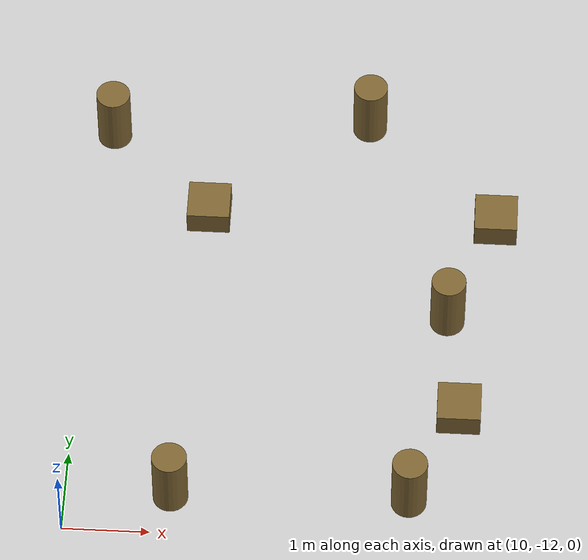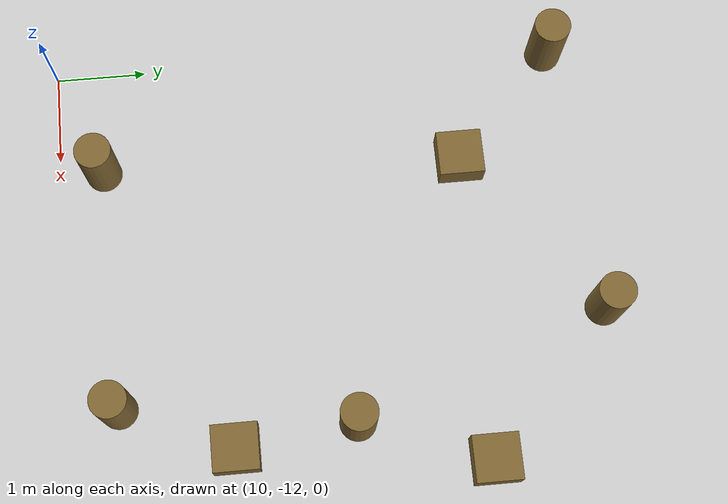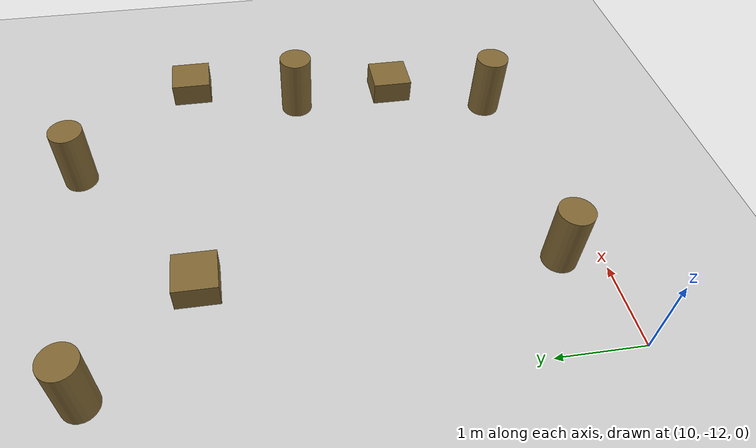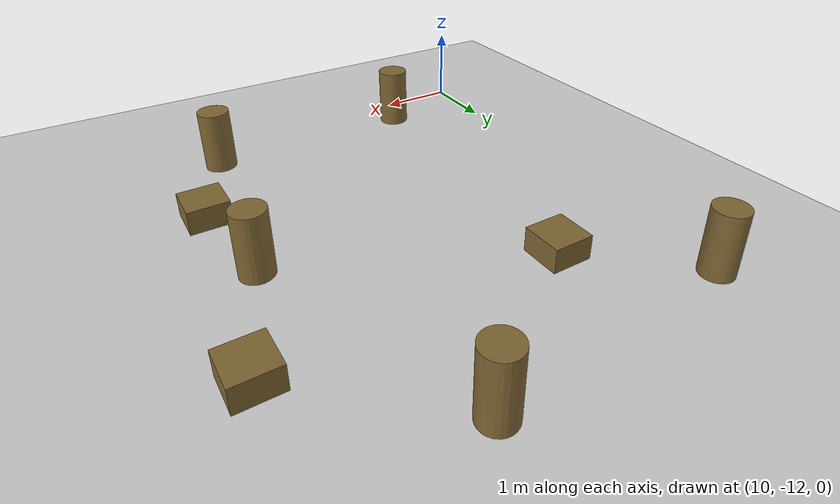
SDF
<sdf version="1.6">
 <world name="default">
  <model name="ground_plane">
   <static>1</static>
   <link name="link">
    <collision name="collision">
     <geometry><plane><normal>0 0 1</normal><size>100 100</size></plane></geometry>
     <surface><friction><ode><mu>100</mu><mu2>50</mu2></ode></friction></surface>
    </collision>
    <visual name="visual">
     <cast_shadows>0</cast_shadows>
     <geometry><plane><normal>0 0 1</normal><size>100 100</size></plane></geometry>
     <material>
      <script><uri>file://media/materials/scripts/gazebo.material</uri><name>Gazebo/Grey</name></script>
     </material>
    </visual>
   </link>
  </model>
  <model name="mini_cylinder_0_clone_0_clone">
   <link name="link">
    <inertial>
     <mass>1</mass>
     <inertia><ixx>0.145833</ixx><ixy>0</ixy><ixz>0</ixz><iyy>0.145833</iyy><iyz>0</iyz><izz>0.125</izz></inertia>
    </inertial>
    <visual name="visual">
     <geometry><cylinder><radius>0.2</radius><length>0.8</length></cylinder></geometry>
     <material>
      <script><name>Gazebo/Grey</name><uri>file://media/materials/scripts/gazebo.material</uri></script>
      <shader type="vertex"><normal_map>__default__</normal_map></shader>
      <ambient>0.5 0.4 0.2 1</ambient>
      <diffuse>0.7 0.7 0.7 1</diffuse>
      <specular>0.01 0.01 0.01 1</specular>
      <emissive>0 0 0 1</emissive>
     </material>
    </visual>
    <collision name="collision">
     <geometry><cylinder><radius>0.2</radius><length>0.8</length></cylinder></geometry>
     <surface>
      <friction>
       <ode><mu>1</mu><mu2>1</mu2><fdir1>0 0 0</fdir1><slip1>0</slip1><slip2>0</slip2></ode>
       <torsional>
        <coefficient>1</coefficient>
        <patch_radius>0</patch_radius>
        <surface_radius>0</surface_radius>
        <use_patch_radius>1</use_patch_radius>
        <ode><slip>0</slip></ode>
       </torsional>
      </friction>
      <bounce><restitution_coefficient>0</restitution_coefficient><threshold>1e+06</threshold></bounce>
      <contact>
       <collide_without_contact>0</collide_without_contact>
       <collide_without_contact_bitmask>1</collide_without_contact_bitmask>
       <collide_bitmask>1</collide_bitmask>
       <ode>
        <soft_cfm>0</soft_cfm>
        <soft_erp>0.2</soft_erp>
        <kp>1e+13</kp>
        <kd>1</kd>
        <max_vel>0.01</max_vel>
        <min_depth>0</min_depth>
       </ode>
       <bullet>
        <split_impulse>1</split_impulse>
        <split_impulse_penetration_threshold>-0.01</split_impulse_penetration_threshold>
        <soft_cfm>0</soft_cfm>
        <soft_erp>0.2</soft_erp>
        <kp>1e+13</kp>
        <kd>1</kd>
       </bullet>
      </contact>
     </surface>
    </collision>
   </link>
   <static>1</static>
   <pose>13.224 -6.11998 0.4 0 -0 0</pose>
  </model>
  <model name="mini_cylinder_0_clone_0_clone_1">
   <link name="link">
    <inertial>
     <mass>1</mass>
     <inertia><ixx>0.145833</ixx><ixy>0</ixy><ixz>0</ixz><iyy>0.145833</iyy><iyz>0</iyz><izz>0.125</izz></inertia>
    </inertial>
    <visual name="visual">
     <geometry><cylinder><radius>0.2</radius><length>0.8</length></cylinder></geometry>
     <material>
      <script><name>Gazebo/Grey</name><uri>file://media/materials/scripts/gazebo.material</uri></script>
      <shader type="vertex"><normal_map>__default__</normal_map></shader>
      <ambient>0.5 0.4 0.2 1</ambient>
      <diffuse>0.7 0.7 0.7 1</diffuse>
      <specular>0.01 0.01 0.01 1</specular>
      <emissive>0 0 0 1</emissive>
     </material>
    </visual>
    <collision name="collision">
     <geometry><cylinder><radius>0.2</radius><length>0.8</length></cylinder></geometry>
     <surface>
      <friction>
       <ode><mu>1</mu><mu2>1</mu2><fdir1>0 0 0</fdir1><slip1>0</slip1><slip2>0</slip2></ode>
       <torsional>
        <coefficient>1</coefficient>
        <patch_radius>0</patch_radius>
        <surface_radius>0</surface_radius>
        <use_patch_radius>1</use_patch_radius>
        <ode><slip>0</slip></ode>
       </torsional>
      </friction>
      <bounce><restitution_coefficient>0</restitution_coefficient><threshold>1e+06</threshold></bounce>
      <contact>
       <collide_without_contact>0</collide_without_contact>
       <collide_without_contact_bitmask>1</collide_without_contact_bitmask>
       <collide_bitmask>1</collide_bitmask>
       <ode>
        <soft_cfm>0</soft_cfm>
        <soft_erp>0.2</soft_erp>
        <kp>1e+13</kp>
        <kd>1</kd>
        <max_vel>0.01</max_vel>
        <min_depth>0</min_depth>
       </ode>
       <bullet>
        <split_impulse>1</split_impulse>
        <split_impulse_penetration_threshold>-0.01</split_impulse_penetration_threshold>
        <soft_cfm>0</soft_cfm>
        <soft_erp>0.2</soft_erp>
        <kp>1e+13</kp>
        <kd>1</kd>
       </bullet>
      </contact>
     </surface>
    </collision>
   </link>
   <static>1</static>
   <pose>14.2436 -8.91515 0.4 0 -0 0</pose>
  </model>
  <model name="mini_cylinder_0_clone_0_clone_2">
   <link name="link">
    <inertial>
     <mass>1</mass>
     <inertia><ixx>0.145833</ixx><ixy>0</ixy><ixz>0</ixz><iyy>0.145833</iyy><iyz>0</iyz><izz>0.125</izz></inertia>
    </inertial>
    <visual name="visual">
     <geometry><cylinder><radius>0.2</radius><length>0.8</length></cylinder></geometry>
     <material>
      <script><name>Gazebo/Grey</name><uri>file://media/materials/scripts/gazebo.material</uri></script>
      <shader type="vertex"><normal_map>__default__</normal_map></shader>
      <ambient>0.5 0.4 0.2 1</ambient>
      <diffuse>0.7 0.7 0.7 1</diffuse>
      <specular>0.01 0.01 0.01 1</specular>
      <emissive>0 0 0 1</emissive>
     </material>
    </visual>
    <collision name="collision">
     <geometry><cylinder><radius>0.2</radius><length>0.8</length></cylinder></geometry>
     <surface>
      <friction>
       <ode><mu>1</mu><mu2>1</mu2><fdir1>0 0 0</fdir1><slip1>0</slip1><slip2>0</slip2></ode>
       <torsional>
        <coefficient>1</coefficient>
        <patch_radius>0</patch_radius>
        <surface_radius>0</surface_radius>
        <use_patch_radius>1</use_patch_radius>
        <ode><slip>0</slip></ode>
       </torsional>
      </friction>
      <bounce><restitution_coefficient>0</restitution_coefficient><threshold>1e+06</threshold></bounce>
      <contact>
       <collide_without_contact>0</collide_without_contact>
       <collide_without_contact_bitmask>1</collide_without_contact_bitmask>
       <collide_bitmask>1</collide_bitmask>
       <ode>
        <soft_cfm>0</soft_cfm>
        <soft_erp>0.2</soft_erp>
        <kp>1e+13</kp>
        <kd>1</kd>
        <max_vel>0.01</max_vel>
        <min_depth>0</min_depth>
       </ode>
       <bullet>
        <split_impulse>1</split_impulse>
        <split_impulse_penetration_threshold>-0.01</split_impulse_penetration_threshold>
        <soft_cfm>0</soft_cfm>
        <soft_erp>0.2</soft_erp>
        <kp>1e+13</kp>
        <kd>1</kd>
       </bullet>
      </contact>
     </surface>
    </collision>
   </link>
   <static>1</static>
   <pose>13.8924 -11.4476 0.4 0 -0 0</pose>
  </model>
  <model name="mini_box_clone_clone_3_clone">
   <link name="link">
    <inertial>
     <mass>1</mass>
     <inertia>
      <ixx>0.166667</ixx>
      <ixy>0</ixy>
      <ixz>0</ixz>
      <iyy>0.166667</iyy>
      <iyz>0</iyz>
      <izz>0.166667</izz>
     </inertia>
    </inertial>
    <visual name="visual">
     <geometry><box><size>0.5 0.5 0.3</size></box></geometry>
     <material>
      <script><name>Gazebo/Grey</name><uri>file://media/materials/scripts/gazebo.material</uri></script>
      <shader type="vertex"><normal_map>__default__</normal_map></shader>
      <ambient>0.5 0.4 0.2 1</ambient>
      <diffuse>0.7 0.7 0.7 1</diffuse>
      <specular>0.01 0.01 0.01 1</specular>
      <emissive>0 0 0 1</emissive>
     </material>
    </visual>
    <collision name="collision">
     <geometry><box><size>0.5 0.5 0.3</size></box></geometry>
     <surface>
      <friction>
       <ode><mu>1</mu><mu2>1</mu2><fdir1>0 0 0</fdir1><slip1>0</slip1><slip2>0</slip2></ode>
       <torsional>
        <coefficient>1</coefficient>
        <patch_radius>0</patch_radius>
        <surface_radius>0</surface_radius>
        <use_patch_radius>1</use_patch_radius>
        <ode><slip>0</slip></ode>
       </torsional>
      </friction>
      <bounce><restitution_coefficient>0</restitution_coefficient><threshold>1e+06</threshold></bounce>
      <contact>
       <collide_without_contact>0</collide_without_contact>
       <collide_without_contact_bitmask>1</collide_without_contact_bitmask>
       <collide_bitmask>1</collide_bitmask>
       <ode>
        <soft_cfm>0</soft_cfm>
        <soft_erp>0.2</soft_erp>
        <kp>1e+13</kp>
        <kd>1</kd>
        <max_vel>0.01</max_vel>
        <min_depth>0</min_depth>
       </ode>
       <bullet>
        <split_impulse>1</split_impulse>
        <split_impulse_penetration_threshold>-0.01</split_impulse_penetration_threshold>
        <soft_cfm>0</soft_cfm>
        <soft_erp>0.2</soft_erp>
        <kp>1e+13</kp>
        <kd>1</kd>
       </bullet>
      </contact>
     </surface>
    </collision>
   </link>
   <static>1</static>
   <pose>11.3808 -7.50629 0.15 0 -0 0</pose>
  </model>
  <model name="mini_box_clone_clone_3_clone_1">
   <link name="link">
    <inertial>
     <mass>1</mass>
     <inertia>
      <ixx>0.166667</ixx>
      <ixy>0</ixy>
      <ixz>0</ixz>
      <iyy>0.166667</iyy>
      <iyz>0</iyz>
      <izz>0.166667</izz>
     </inertia>
    </inertial>
    <visual name="visual">
     <geometry><box><size>0.5 0.5 0.3</size></box></geometry>
     <material>
      <script><name>Gazebo/Grey</name><uri>file://media/materials/scripts/gazebo.material</uri></script>
      <shader type="vertex"><normal_map>__default__</normal_map></shader>
      <ambient>0.5 0.4 0.2 1</ambient>
      <diffuse>0.7 0.7 0.7 1</diffuse>
      <specular>0.01 0.01 0.01 1</specular>
      <emissive>0 0 0 1</emissive>
     </material>
    </visual>
    <collision name="collision">
     <geometry><box><size>0.5 0.5 0.3</size></box></geometry>
     <surface>
      <friction>
       <ode><mu>1</mu><mu2>1</mu2><fdir1>0 0 0</fdir1><slip1>0</slip1><slip2>0</slip2></ode>
       <torsional>
        <coefficient>1</coefficient>
        <patch_radius>0</patch_radius>
        <surface_radius>0</surface_radius>
        <use_patch_radius>1</use_patch_radius>
        <ode><slip>0</slip></ode>
       </torsional>
      </friction>
      <bounce><restitution_coefficient>0</restitution_coefficient><threshold>1e+06</threshold></bounce>
      <contact>
       <collide_without_contact>0</collide_without_contact>
       <collide_without_contact_bitmask>1</collide_without_contact_bitmask>
       <collide_bitmask>1</collide_bitmask>
       <ode>
        <soft_cfm>0</soft_cfm>
        <soft_erp>0.2</soft_erp>
        <kp>1e+13</kp>
        <kd>1</kd>
        <max_vel>0.01</max_vel>
        <min_depth>0</min_depth>
       </ode>
       <bullet>
        <split_impulse>1</split_impulse>
        <split_impulse_penetration_threshold>-0.01</split_impulse_penetration_threshold>
        <soft_cfm>0</soft_cfm>
        <soft_erp>0.2</soft_erp>
        <kp>1e+13</kp>
        <kd>1</kd>
       </bullet>
      </contact>
     </surface>
    </collision>
   </link>
   <static>1</static>
   <pose>14.4187 -10.2264 0.15 0 -0 0</pose>
  </model>
  <model name="mini_box_clone_clone_3_clone_2">
   <link name="link">
    <inertial>
     <mass>1</mass>
     <inertia>
      <ixx>0.166667</ixx>
      <ixy>0</ixy>
      <ixz>0</ixz>
      <iyy>0.166667</iyy>
      <iyz>0</iyz>
      <izz>0.166667</izz>
     </inertia>
    </inertial>
    <visual name="visual">
     <geometry><box><size>0.5 0.5 0.3</size></box></geometry>
     <material>
      <script><name>Gazebo/Grey</name><uri>file://media/materials/scripts/gazebo.material</uri></script>
      <shader type="vertex"><normal_map>__default__</normal_map></shader>
      <ambient>0.5 0.4 0.2 1</ambient>
      <diffuse>0.7 0.7 0.7 1</diffuse>
      <specular>0.01 0.01 0.01 1</specular>
      <emissive>0 0 0 1</emissive>
     </material>
    </visual>
    <collision name="collision">
     <geometry><box><size>0.5 0.5 0.3</size></box></geometry>
     <surface>
      <friction>
       <ode><mu>1</mu><mu2>1</mu2><fdir1>0 0 0</fdir1><slip1>0</slip1><slip2>0</slip2></ode>
       <torsional>
        <coefficient>1</coefficient>
        <patch_radius>0</patch_radius>
        <surface_radius>0</surface_radius>
        <use_patch_radius>1</use_patch_radius>
        <ode><slip>0</slip></ode>
       </torsional>
      </friction>
      <bounce><restitution_coefficient>0</restitution_coefficient><threshold>1e+06</threshold></bounce>
      <contact>
       <collide_without_contact>0</collide_without_contact>
       <collide_without_contact_bitmask>1</collide_without_contact_bitmask>
       <collide_bitmask>1</collide_bitmask>
       <ode>
        <soft_cfm>0</soft_cfm>
        <soft_erp>0.2</soft_erp>
        <kp>1e+13</kp>
        <kd>1</kd>
        <max_vel>0.01</max_vel>
        <min_depth>0</min_depth>
       </ode>
       <bullet>
        <split_impulse>1</split_impulse>
        <split_impulse_penetration_threshold>-0.01</split_impulse_penetration_threshold>
        <soft_cfm>0</soft_cfm>
        <soft_erp>0.2</soft_erp>
        <kp>1e+13</kp>
        <kd>1</kd>
       </bullet>
      </contact>
     </surface>
    </collision>
   </link>
   <static>1</static>
   <pose>14.767 -7.51176 0.15 0 -0 0</pose>
  </model>
  <model name="mini_cylinder_0_clone_0_clone_clone">
   <link name="link">
    <inertial>
     <mass>1</mass>
     <inertia><ixx>0.145833</ixx><ixy>0</ixy><ixz>0</ixz><iyy>0.145833</iyy><iyz>0</iyz><izz>0.125</izz></inertia>
    </inertial>
    <visual name="visual">
     <geometry><cylinder><radius>0.2</radius><length>0.8</length></cylinder></geometry>
     <material>
      <script><name>Gazebo/Grey</name><uri>file://media/materials/scripts/gazebo.material</uri></script>
      <shader type="vertex"><normal_map>__default__</normal_map></shader>
      <ambient>0.5 0.4 0.2 1</ambient>
      <diffuse>0.7 0.7 0.7 1</diffuse>
      <specular>0.01 0.01 0.01 1</specular>
      <emissive>0 0 0 1</emissive>
     </material>
    </visual>
    <collision name="collision">
     <geometry><cylinder><radius>0.2</radius><length>0.8</length></cylinder></geometry>
     <surface>
      <friction>
       <ode><mu>1</mu><mu2>1</mu2><fdir1>0 0 0</fdir1><slip1>0</slip1><slip2>0</slip2></ode>
       <torsional>
        <coefficient>1</coefficient>
        <patch_radius>0</patch_radius>
        <surface_radius>0</surface_radius>
        <use_patch_radius>1</use_patch_radius>
        <ode><slip>0</slip></ode>
       </torsional>
      </friction>
      <bounce><restitution_coefficient>0</restitution_coefficient><threshold>1e+06</threshold></bounce>
      <contact>
       <collide_without_contact>0</collide_without_contact>
       <collide_without_contact_bitmask>1</collide_without_contact_bitmask>
       <collide_bitmask>1</collide_bitmask>
       <ode>
        <soft_cfm>0</soft_cfm>
        <soft_erp>0.2</soft_erp>
        <kp>1e+13</kp>
        <kd>1</kd>
        <max_vel>0.01</max_vel>
        <min_depth>0</min_depth>
       </ode>
       <bullet>
        <split_impulse>1</split_impulse>
        <split_impulse_penetration_threshold>-0.01</split_impulse_penetration_threshold>
        <soft_cfm>0</soft_cfm>
        <soft_erp>0.2</soft_erp>
        <kp>1e+13</kp>
        <kd>1</kd>
       </bullet>
      </contact>
     </surface>
    </collision>
   </link>
   <static>1</static>
   <pose>10.1744 -6.38296 0.4 0 -0 0</pose>
  </model>
  <model name="mini_cylinder_0_clone_0_clone_clone_0">
   <link name="link">
    <inertial>
     <mass>1</mass>
     <inertia><ixx>0.145833</ixx><ixy>0</ixy><ixz>0</ixz><iyy>0.145833</iyy><iyz>0</iyz><izz>0.125</izz></inertia>
    </inertial>
    <visual name="visual">
     <geometry><cylinder><radius>0.2</radius><length>0.8</length></cylinder></geometry>
     <material>
      <script><name>Gazebo/Grey</name><uri>file://media/materials/scripts/gazebo.material</uri></script>
      <shader type="vertex"><normal_map>__default__</normal_map></shader>
      <ambient>0.5 0.4 0.2 1</ambient>
      <diffuse>0.7 0.7 0.7 1</diffuse>
      <specular>0.01 0.01 0.01 1</specular>
      <emissive>0 0 0 1</emissive>
     </material>
    </visual>
    <collision name="collision">
     <geometry><cylinder><radius>0.2</radius><length>0.8</length></cylinder></geometry>
     <surface>
      <friction>
       <ode><mu>1</mu><mu2>1</mu2><fdir1>0 0 0</fdir1><slip1>0</slip1><slip2>0</slip2></ode>
       <torsional>
        <coefficient>1</coefficient>
        <patch_radius>0</patch_radius>
        <surface_radius>0</surface_radius>
        <use_patch_radius>1</use_patch_radius>
        <ode><slip>0</slip></ode>
       </torsional>
      </friction>
      <bounce><restitution_coefficient>0</restitution_coefficient><threshold>1e+06</threshold></bounce>
      <contact>
       <collide_without_contact>0</collide_without_contact>
       <collide_without_contact_bitmask>1</collide_without_contact_bitmask>
       <collide_bitmask>1</collide_bitmask>
       <ode>
        <soft_cfm>0</soft_cfm>
        <soft_erp>0.2</soft_erp>
        <kp>1e+13</kp>
        <kd>1</kd>
        <max_vel>0.01</max_vel>
        <min_depth>0</min_depth>
       </ode>
       <bullet>
        <split_impulse>1</split_impulse>
        <split_impulse_penetration_threshold>-0.01</split_impulse_penetration_threshold>
        <soft_cfm>0</soft_cfm>
        <soft_erp>0.2</soft_erp>
        <kp>1e+13</kp>
        <kd>1</kd>
       </bullet>
      </contact>
     </surface>
    </collision>
   </link>
   <static>1</static>
   <pose>11.1967 -11.5076 0.4 0 -0 0</pose>
  </model>
 </world>
</sdf>
